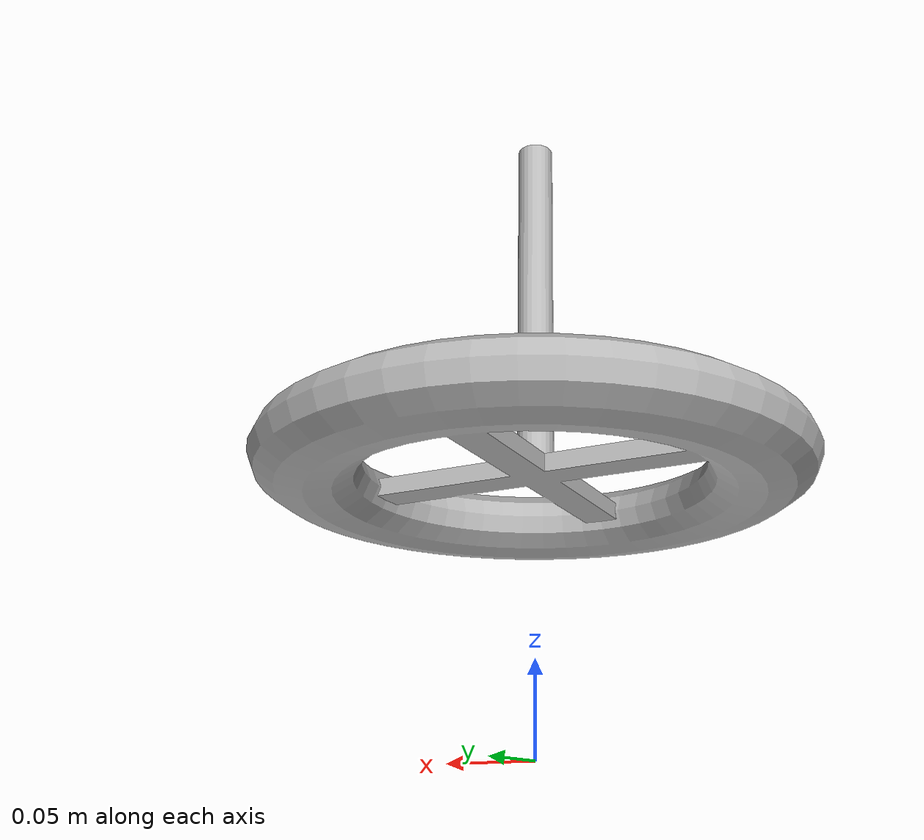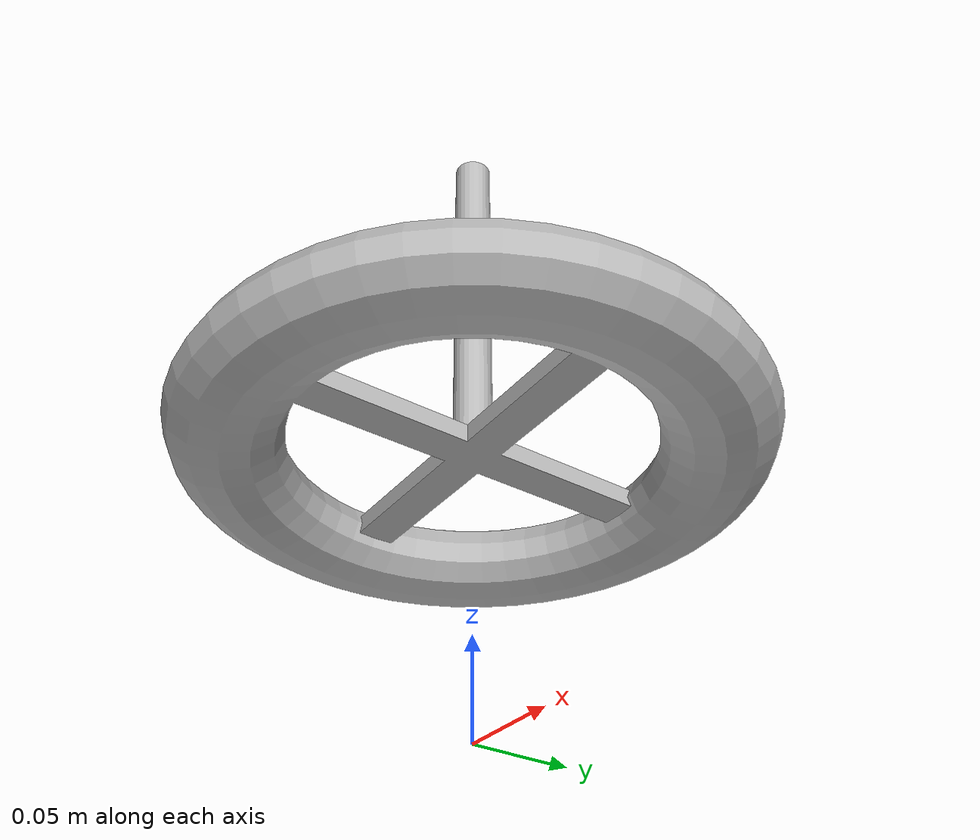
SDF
<?xml version='1.0'?>
<sdf version='1.3'>
  <model name='mit_valve'>
    <static>false</static>
    <link name='wheel'>
      <collision name="collision">
        <pose>0 0 0.15 0 0 0</pose>
        <geometry>
          <mesh>
            <uri>model://mit_valve/meshes/vrc_valve.dae</uri>
          </mesh>
        </geometry>
      </collision>

      <visual name="visual">
        <pose>0 0 0.15 0 0 0</pose>
        <geometry>
          <mesh>
            <uri>model://mit_valve/meshes/vrc_valve.dae</uri>
          </mesh>
        </geometry>
        <material>
          <script>
            <uri>model://mit_valve/materials/scripts</uri>
            <name>mit/valve</name>
          </script>
        </material>
      </visual>
    </link>

    <link name="pipe">
      <pose>0 0 0.25 0 0 0</pose>
      <collision name="collision">
        <geometry>
          <cylinder>
            <radius>0.01</radius>
            <length>0.2</length>
          </cylinder>
        </geometry>
      </collision>
      <visual name="visual">
        <geometry>
          <cylinder>
            <radius>0.01</radius>
            <length>0.2</length>
          </cylinder>
        </geometry>
        <material>
          <script>
            <uri>model://mit_valve/materials/scripts</uri>
            <name>mit/valve</name>
          </script>
        </material>
      </visual>
    </link>

    <joint name="joint" type="revolute">
      <child>pipe</child>
      <parent>wheel</parent>
      <axis>
        <xyz>0 0 1</xyz>
        <limit>
          <lower>-6</lower>
          <upper>6</upper>
        </limit>
      </axis>
    </joint>

    <joint name="world_joint" type="revolute">
      <child>pipe</child>
      <parent>world</parent>
      <axis>
        <xyz>0 1 0</xyz>
      </axis>
    </joint>
  </model>
</sdf>
